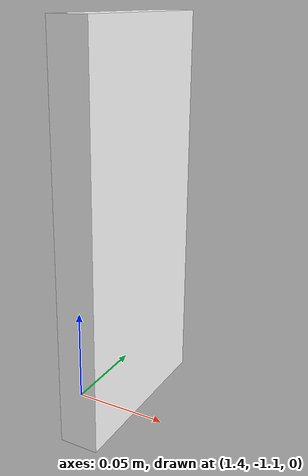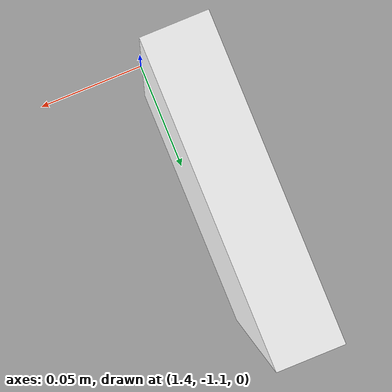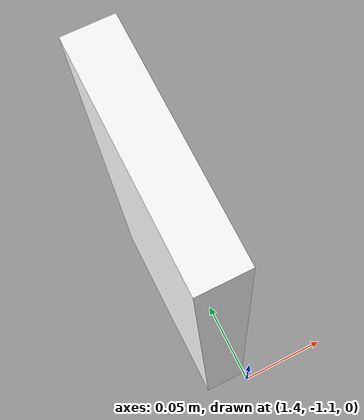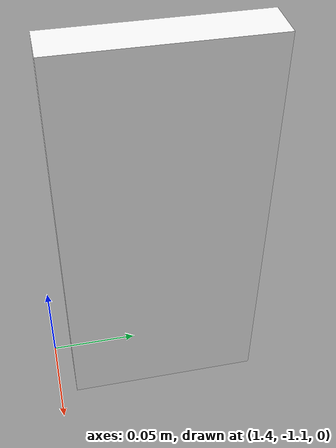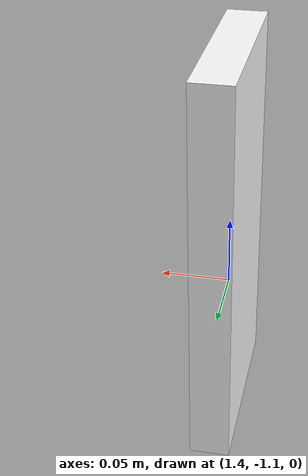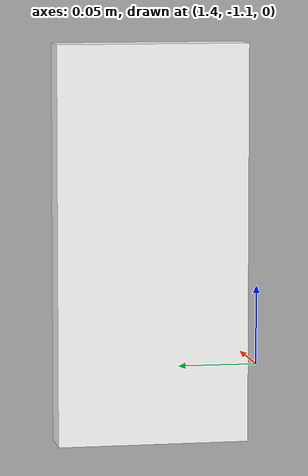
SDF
<?xml version='1.0'?>
<sdf version='1.6'>
  <model name='intersection_right'>
    <pose>1.39 -1.03 0.08 0 0 -1.57</pose>
    <link name='intersection_right'>
       <collision name='collision'>
          <geometry>
            <box>
              <size>0.12 0.025 0.20</size>
            </box>
          </geometry>
        </collision>
        <visual name='visual'>
          <geometry>
            <box>
              <size>0.12 0.025 0.25</size>
            </box>
          </geometry>
          <material>
          <diffuse>1.0 1.0 1.0</diffuse>
          <specular>1.0 1.0 1.0</specular>
            <pbr>
              <metal>
                <albedo_map>file://intersection/traffic_right.png</albedo_map>
              </metal>
            </pbr>
          </material>
        </visual>
      </link>
      <static>1</static>
    </model>
</sdf>
